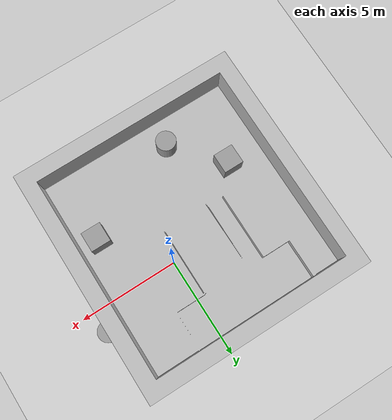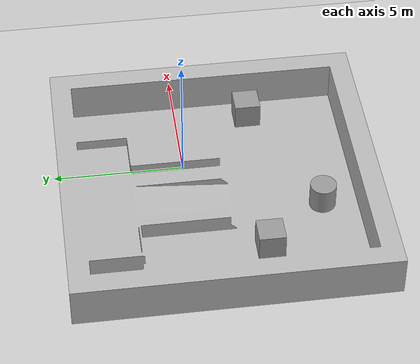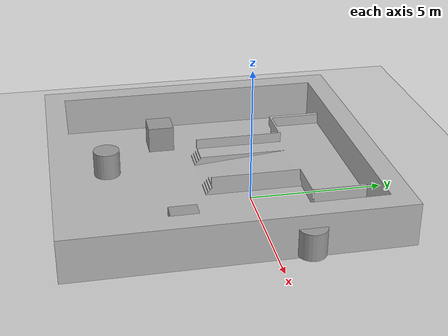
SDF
<sdf version="1.6">
 <world name="default">
  <light name="sun" type="directional">
   <pose>0 0 10 0 -0 0</pose>
   <diffuse>0.8 0.8 0.8 1</diffuse>
   <specular>0.1 0.1 0.1 1</specular>
   <attenuation>
    <range>1000</range>
    <constant>0.9</constant>
    <linear>0.01</linear>
    <quadratic>0.001</quadratic>
   </attenuation>
   <direction>-0.5 0.5 -1</direction>
  </light>
  <model name="ground_plane">
   <static>1</static>
   <link name="link">
    <collision name="collision">
     <geometry><plane><normal>0 0 1</normal><size>100 100</size></plane></geometry>
     <surface><friction><ode><mu>100</mu><mu2>50</mu2></ode></friction></surface>
    </collision>
    <visual name="visual">
     <cast_shadows>0</cast_shadows>
     <geometry><plane><normal>0 0 1</normal><size>100 100</size></plane></geometry>
     <material>
      <script><uri>file://media/materials/scripts/gazebo.material</uri><name>Gazebo/Grey</name></script>
     </material>
    </visual>
   </link>
  </model>
  <gravity>0 0 -9.8</gravity>
  <magnetic_field>6e-06 2.3e-05 -4.2e-05</magnetic_field>
  <atmosphere type="adiabatic"/>
  <physics name="default_physics" default="0" type="ode">
   <max_step_size>0.001</max_step_size>
   <real_time_factor>1</real_time_factor>
   <real_time_update_rate>1000</real_time_update_rate>
  </physics>
  <scene><ambient>0.4 0.4 0.4 1</ambient><background>0.7 0.7 0.7 1</background><shadows>1</shadows></scene>
  <spherical_coordinates>
   <surface_model>EARTH_WGS84</surface_model>
   <latitude_deg>0</latitude_deg>
   <longitude_deg>0</longitude_deg>
   <elevation>0</elevation>
   <heading_deg>0</heading_deg>
  </spherical_coordinates>
  <model name="slope">
   <static>1</static>
   <link name="base">
    <visual name="visual">
     <geometry><mesh><uri>model://slope/meshes/slope.stl</uri><scale>0.8 0.8 0.8</scale></mesh></geometry>
    </visual>
    <collision name="simple_collision">
     <geometry><mesh><uri>model://slope/meshes/slope.stl</uri><scale>0.8 0.8 0.8</scale></mesh></geometry>
     <surface>
      <friction>
       <ode>
        <mu>0.10</mu>
        <mu2>0.10</mu2>
        <fdir1>0.000000 0.000000 0.000000</fdir1>
        <slip1>0.000000</slip1>
        <slip2>0.000000</slip2>
       </ode>
      </friction>
     </surface>
    </collision>
   </link>
   <pose>-6.60594 -3.96076 0 0 -0 0</pose>
  </model>
  <model name="unit_box_0">
   <pose>-4.74744 -2.69495 0.6 0 -0 0</pose>
   <link name="link">
    <inertial>
     <mass>1</mass>
     <inertia>
      <ixx>0.166667</ixx>
      <ixy>0</ixy>
      <ixz>0</ixz>
      <iyy>0.166667</iyy>
      <iyz>0</iyz>
      <izz>0.166667</izz>
     </inertia>
    </inertial>
    <collision name="collision"><geometry><box><size>1 1 1</size></box></geometry></collision>
    <visual name="visual">
     <geometry><box><size>1 1 1</size></box></geometry>
     <material>
      <script><name>Gazebo/Grey</name><uri>file://media/materials/scripts/gazebo.material</uri></script>
     </material>
    </visual>
   </link>
  </model>
  <model name="unit_cylinder_0">
   <pose>4.1458 1.13828 0.59999 0 -0 6e-06</pose>
   <link name="link">
    <inertial>
     <mass>1</mass>
     <inertia><ixx>0.145833</ixx><ixy>0</ixy><ixz>0</ixz><iyy>0.145833</iyy><iyz>0</iyz><izz>0.125</izz></inertia>
    </inertial>
    <collision name="collision">
     <geometry><cylinder><radius>0.5</radius><length>1</length></cylinder></geometry>
    </collision>
    <visual name="visual">
     <geometry><cylinder><radius>0.5</radius><length>1</length></cylinder></geometry>
     <material>
      <script><name>Gazebo/Grey</name><uri>file://media/materials/scripts/gazebo.material</uri></script>
     </material>
    </visual>
   </link>
  </model>
  <model name="unit_box_1">
   <pose>2.44598 -2.82887 0.6 0 -0 0</pose>
   <link name="link">
    <inertial>
     <mass>1</mass>
     <inertia>
      <ixx>0.166667</ixx>
      <ixy>0</ixy>
      <ixz>0</ixz>
      <iyy>0.166667</iyy>
      <iyz>0</iyz>
      <izz>0.166667</izz>
     </inertia>
    </inertial>
    <collision name="collision"><geometry><box><size>1 1 1</size></box></geometry></collision>
    <visual name="visual">
     <geometry><box><size>1 1 1</size></box></geometry>
     <material>
      <script><name>Gazebo/Grey</name><uri>file://media/materials/scripts/gazebo.material</uri></script>
     </material>
    </visual>
   </link>
  </model>
  <model name="unit_cylinder_1">
   <pose>-2.71687 -5.0136 0.6 0 -0 1.5e-05</pose>
   <link name="link">
    <inertial>
     <mass>1</mass>
     <inertia><ixx>0.145833</ixx><ixy>0</ixy><ixz>0</ixz><iyy>0.145833</iyy><iyz>0</iyz><izz>0.125</izz></inertia>
    </inertial>
    <collision name="collision">
     <geometry><cylinder><radius>0.5</radius><length>1</length></cylinder></geometry>
    </collision>
    <visual name="visual">
     <geometry><cylinder><radius>0.5</radius><length>1</length></cylinder></geometry>
     <material>
      <script><name>Gazebo/Grey</name><uri>file://media/materials/scripts/gazebo.material</uri></script>
     </material>
    </visual>
   </link>
  </model>
 </world>
</sdf>
